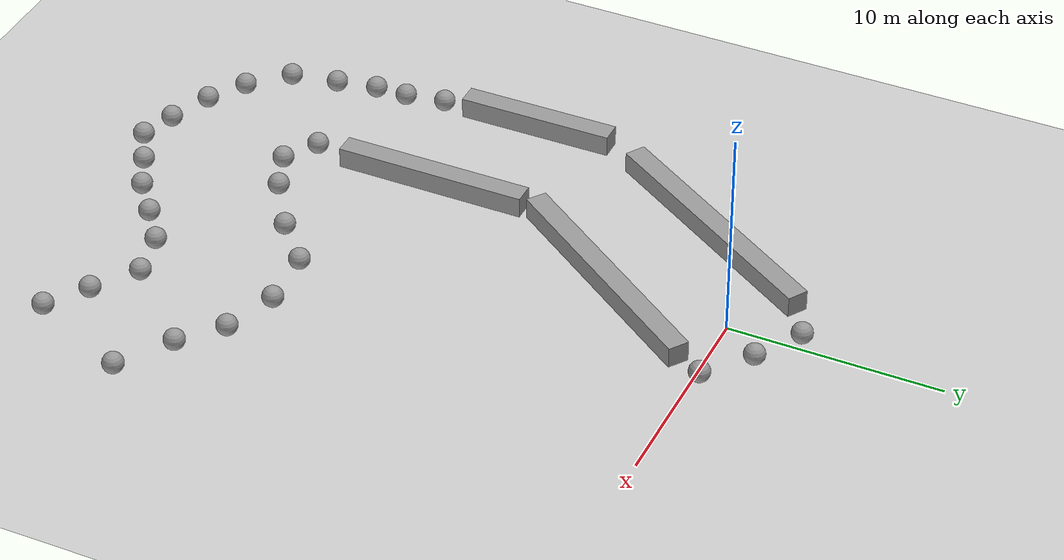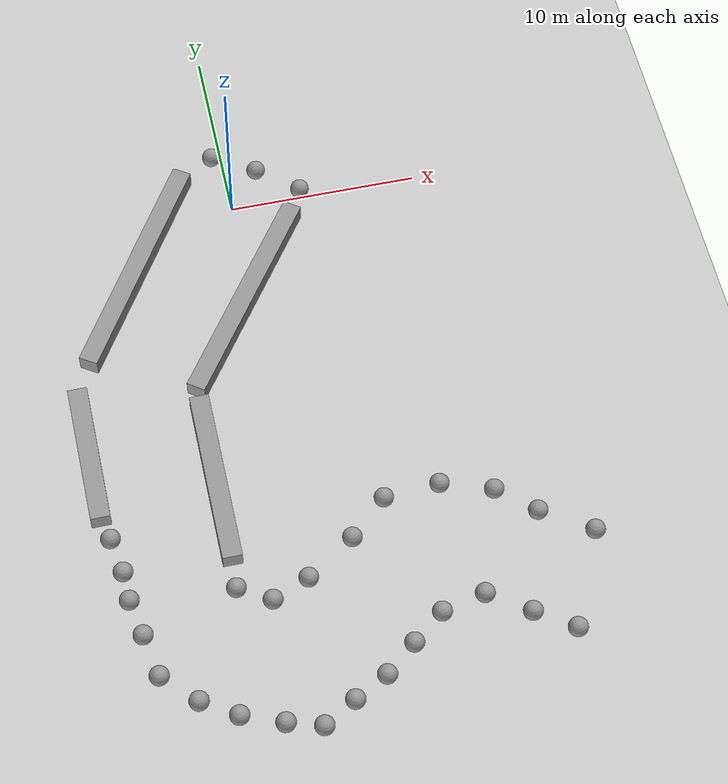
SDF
<sdf version="1.7">
 <world name="empty">
  <light name="sun" type="directional">
   <pose>0 0 10 0 -0 0</pose>
   <diffuse>0.8 0.8 0.8 1</diffuse>
   <specular>0.2 0.2 0.2 1</specular>
   <attenuation>
    <range>1000</range>
    <constant>0.9</constant>
    <linear>0.01</linear>
    <quadratic>0.001</quadratic>
   </attenuation>
   <direction>-0.5 0.1 -0.9</direction>
   <spot><inner_angle>0</inner_angle><outer_angle>0</outer_angle><falloff>0</falloff></spot>
  </light>
  <model name="ground_plane">
   <static>1</static>
   <link name="link">
    <collision name="collision">
     <geometry><plane><normal>0 0 1</normal><size>500 500</size></plane></geometry>
     <surface>
      <friction>
       <ode><mu>0.5</mu><mu2>0.5</mu2></ode>
       <bullet><rolling_friction>0.02</rolling_friction></bullet>
      </friction>
      <contact><ode><kp>5e+06</kp><kd>200000</kd></ode></contact>
     </surface>
    </collision>
    <visual name="visual">
     <cast_shadows>0</cast_shadows>
     <geometry><plane><normal>0 0 1</normal><size>500 500</size></plane></geometry>
     <material>
      <script><uri>file://media/materials/scripts/gazebo.material</uri><name>Gazebo/Grey</name></script>
     </material>
    </visual>
    <velocity_decay><linear>0</linear><angular>0</angular></velocity_decay>
   </link>
  </model>
  <gravity>0 0 -9.8</gravity>
  <magnetic_field>6e-06 2.3e-05 -4.2e-05</magnetic_field>
  <atmosphere type="adiabatic"/>
  <physics type="ode">
   <max_step_size>0.001</max_step_size>
   <real_time_factor>1</real_time_factor>
   <real_time_update_rate>1000</real_time_update_rate>
  </physics>
  <scene><ambient>0.4 0.4 0.4 1</ambient><background>0.7 0.7 0.7 1</background><shadows>1</shadows></scene>
  <spherical_coordinates>
   <surface_model>EARTH_WGS84</surface_model>
   <latitude_deg>0</latitude_deg>
   <longitude_deg>0</longitude_deg>
   <elevation>0</elevation>
   <heading_deg>0</heading_deg>
  </spherical_coordinates>
  <model name="unit_box">
   <pose>-5.71427 -2.9672 0.499855 2.3e-05 5e-06 -0.566468</pose>
   <link name="link">
    <inertial>
     <mass>1</mass>
     <inertia>
      <ixx>0.166667</ixx>
      <ixy>0</ixy>
      <ixz>0</ixz>
      <iyy>0.166667</iyy>
      <iyz>0</iyz>
      <izz>0.166667</izz>
     </inertia>
    </inertial>
    <collision name="collision"><geometry><box><size>1 12.6853 1</size></box></geometry></collision>
    <visual name="visual">
     <geometry><box><size>1 12.6853 1</size></box></geometry>
     <material>
      <script><name>Gazebo/Grey</name><uri>file://media/materials/scripts/gazebo.material</uri></script>
     </material>
    </visual>
   </link>
  </model>
  <model name="unit_box_0">
   <pose>-0.43622 -5.97894 0.499871 2.1e-05 -2e-06 -0.617081</pose>
   <link name="link">
    <inertial>
     <mass>1</mass>
     <inertia>
      <ixx>0.166667</ixx>
      <ixy>0</ixy>
      <ixz>0</ixz>
      <iyy>0.166667</iyy>
      <iyz>0</iyz>
      <izz>0.166667</izz>
     </inertia>
    </inertial>
    <collision name="collision"><geometry><box><size>1 12.2563 1</size></box></geometry></collision>
    <visual name="visual">
     <geometry><box><size>1 12.2563 1</size></box></geometry>
     <material>
      <script><name>Gazebo/Grey</name><uri>file://media/materials/scripts/gazebo.material</uri></script>
     </material>
    </visual>
   </link>
  </model>
  <model name="unit_box_1">
   <pose>-9.91165 -13.5605 0.499997 0 4e-06 0.004345</pose>
   <link name="link">
    <inertial>
     <mass>1</mass>
     <inertia>
      <ixx>0.166667</ixx>
      <ixy>0</ixy>
      <ixz>0</ixz>
      <iyy>0.166667</iyy>
      <iyz>0</iyz>
      <izz>0.166667</izz>
     </inertia>
    </inertial>
    <collision name="collision"><geometry><box><size>1 7.41282 1</size></box></geometry></collision>
    <visual name="visual">
     <geometry><box><size>1 7.41282 1</size></box></geometry>
     <material>
      <script><name>Gazebo/Grey</name><uri>file://media/materials/scripts/gazebo.material</uri></script>
     </material>
    </visual>
   </link>
  </model>
  <model name="unit_box_2">
   <pose>-3.92625 -16.1129 0.499994 1e-06 -1e-06 -0.000456</pose>
   <link name="link">
    <inertial>
     <mass>1</mass>
     <inertia>
      <ixx>0.166667</ixx>
      <ixy>0</ixy>
      <ixz>0</ixz>
      <iyy>0.166667</iyy>
      <iyz>0</iyz>
      <izz>0.166667</izz>
     </inertia>
    </inertial>
    <collision name="collision"><geometry><box><size>1 9.14933 1</size></box></geometry></collision>
    <visual name="visual">
     <geometry><box><size>1 9.14933 1</size></box></geometry>
     <material>
      <script><name>Gazebo/Grey</name><uri>file://media/materials/scripts/gazebo.material</uri></script>
     </material>
    </visual>
   </link>
  </model>
  <model name="unit_sphere">
   <pose>-9.59292 -18.2768 0.499998 0 -0 0</pose>
   <link name="link">
    <inertial>
     <mass>1</mass>
     <inertia><ixx>0.1</ixx><ixy>0</ixy><ixz>0</ixz><iyy>0.1</iyy><iyz>0</iyz><izz>0.1</izz></inertia>
    </inertial>
    <collision name="collision"><geometry><sphere><radius>0.5</radius></sphere></geometry></collision>
    <visual name="visual">
     <geometry><sphere><radius>0.5</radius></sphere></geometry>
     <material>
      <script><name>Gazebo/Grey</name><uri>file://media/materials/scripts/gazebo.material</uri></script>
     </material>
    </visual>
   </link>
  </model>
  <model name="unit_sphere_0">
   <pose>-9.2738 -20.1485 0.499998 0 -0 0</pose>
   <link name="link">
    <inertial>
     <mass>1</mass>
     <inertia><ixx>0.1</ixx><ixy>0</ixy><ixz>0</ixz><iyy>0.1</iyy><iyz>0</iyz><izz>0.1</izz></inertia>
    </inertial>
    <collision name="collision"><geometry><sphere><radius>0.5</radius></sphere></geometry></collision>
    <visual name="visual">
     <geometry><sphere><radius>0.5</radius></sphere></geometry>
     <material>
      <script><name>Gazebo/Grey</name><uri>file://media/materials/scripts/gazebo.material</uri></script>
     </material>
    </visual>
   </link>
  </model>
  <model name="unit_sphere_1">
   <pose>-9.22608 -21.6838 0.499998 0 -0 0</pose>
   <link name="link">
    <inertial>
     <mass>1</mass>
     <inertia><ixx>0.1</ixx><ixy>0</ixy><ixz>0</ixz><iyy>0.1</iyy><iyz>0</iyz><izz>0.1</izz></inertia>
    </inertial>
    <collision name="collision"><geometry><sphere><radius>0.5</radius></sphere></geometry></collision>
    <visual name="visual">
     <geometry><sphere><radius>0.5</radius></sphere></geometry>
     <material>
      <script><name>Gazebo/Grey</name><uri>file://media/materials/scripts/gazebo.material</uri></script>
     </material>
    </visual>
   </link>
  </model>
  <model name="unit_sphere_2">
   <pose>-8.86714 -23.5966 0.499998 0 -0 0</pose>
   <link name="link">
    <inertial>
     <mass>1</mass>
     <inertia><ixx>0.1</ixx><ixy>0</ixy><ixz>0</ixz><iyy>0.1</iyy><iyz>0</iyz><izz>0.1</izz></inertia>
    </inertial>
    <collision name="collision"><geometry><sphere><radius>0.5</radius></sphere></geometry></collision>
    <visual name="visual">
     <geometry><sphere><radius>0.5</radius></sphere></geometry>
     <material>
      <script><name>Gazebo/Grey</name><uri>file://media/materials/scripts/gazebo.material</uri></script>
     </material>
    </visual>
   </link>
  </model>
  <model name="unit_sphere_3">
   <pose>-8.46853 -25.8093 0.499998 0 -0 0</pose>
   <link name="link">
    <inertial>
     <mass>1</mass>
     <inertia><ixx>0.1</ixx><ixy>0</ixy><ixz>0</ixz><iyy>0.1</iyy><iyz>0</iyz><izz>0.1</izz></inertia>
    </inertial>
    <collision name="collision"><geometry><sphere><radius>0.5</radius></sphere></geometry></collision>
    <visual name="visual">
     <geometry><sphere><radius>0.5</radius></sphere></geometry>
     <material>
      <script><name>Gazebo/Grey</name><uri>file://media/materials/scripts/gazebo.material</uri></script>
     </material>
    </visual>
   </link>
  </model>
  <model name="unit_sphere_4">
   <pose>-6.8471 -27.4361 0.499998 0 -0 0</pose>
   <link name="link">
    <inertial>
     <mass>1</mass>
     <inertia><ixx>0.1</ixx><ixy>0</ixy><ixz>0</ixz><iyy>0.1</iyy><iyz>0</iyz><izz>0.1</izz></inertia>
    </inertial>
    <collision name="collision"><geometry><sphere><radius>0.5</radius></sphere></geometry></collision>
    <visual name="visual">
     <geometry><sphere><radius>0.5</radius></sphere></geometry>
     <material>
      <script><name>Gazebo/Grey</name><uri>file://media/materials/scripts/gazebo.material</uri></script>
     </material>
    </visual>
   </link>
  </model>
  <model name="unit_sphere_5">
   <pose>-5.10825 -28.5217 0.499998 0 -0 0</pose>
   <link name="link">
    <inertial>
     <mass>1</mass>
     <inertia><ixx>0.1</ixx><ixy>0</ixy><ixz>0</ixz><iyy>0.1</iyy><iyz>0</iyz><izz>0.1</izz></inertia>
    </inertial>
    <collision name="collision"><geometry><sphere><radius>0.5</radius></sphere></geometry></collision>
    <visual name="visual">
     <geometry><sphere><radius>0.5</radius></sphere></geometry>
     <material>
      <script><name>Gazebo/Grey</name><uri>file://media/materials/scripts/gazebo.material</uri></script>
     </material>
    </visual>
   </link>
  </model>
  <model name="unit_sphere_6">
   <pose>-3.04998 -29.318 0.499998 0 -0 0</pose>
   <link name="link">
    <inertial>
     <mass>1</mass>
     <inertia><ixx>0.1</ixx><ixy>0</ixy><ixz>0</ixz><iyy>0.1</iyy><iyz>0</iyz><izz>0.1</izz></inertia>
    </inertial>
    <collision name="collision"><geometry><sphere><radius>0.5</radius></sphere></geometry></collision>
    <visual name="visual">
     <geometry><sphere><radius>0.5</radius></sphere></geometry>
     <material>
      <script><name>Gazebo/Grey</name><uri>file://media/materials/scripts/gazebo.material</uri></script>
     </material>
    </visual>
   </link>
  </model>
  <model name="unit_sphere_7">
   <pose>-1.30682 -29.845 0.499998 0 -0 0</pose>
   <link name="link">
    <inertial>
     <mass>1</mass>
     <inertia><ixx>0.1</ixx><ixy>0</ixy><ixz>0</ixz><iyy>0.1</iyy><iyz>0</iyz><izz>0.1</izz></inertia>
    </inertial>
    <collision name="collision"><geometry><sphere><radius>0.5</radius></sphere></geometry></collision>
    <visual name="visual">
     <geometry><sphere><radius>0.5</radius></sphere></geometry>
     <material>
      <script><name>Gazebo/Grey</name><uri>file://media/materials/scripts/gazebo.material</uri></script>
     </material>
    </visual>
   </link>
  </model>
  <model name="unit_sphere_8">
   <pose>0.386413 -28.8807 0.499998 0 -0 0</pose>
   <link name="link">
    <inertial>
     <mass>1</mass>
     <inertia><ixx>0.1</ixx><ixy>0</ixy><ixz>0</ixz><iyy>0.1</iyy><iyz>0</iyz><izz>0.1</izz></inertia>
    </inertial>
    <collision name="collision"><geometry><sphere><radius>0.5</radius></sphere></geometry></collision>
    <visual name="visual">
     <geometry><sphere><radius>0.5</radius></sphere></geometry>
     <material>
      <script><name>Gazebo/Grey</name><uri>file://media/materials/scripts/gazebo.material</uri></script>
     </material>
    </visual>
   </link>
  </model>
  <model name="unit_sphere_9">
   <pose>2.13961 -27.9719 0.499998 0 -0 0</pose>
   <link name="link">
    <inertial>
     <mass>1</mass>
     <inertia><ixx>0.1</ixx><ixy>0</ixy><ixz>0</ixz><iyy>0.1</iyy><iyz>0</iyz><izz>0.1</izz></inertia>
    </inertial>
    <collision name="collision"><geometry><sphere><radius>0.5</radius></sphere></geometry></collision>
    <visual name="visual">
     <geometry><sphere><radius>0.5</radius></sphere></geometry>
     <material>
      <script><name>Gazebo/Grey</name><uri>file://media/materials/scripts/gazebo.material</uri></script>
     </material>
    </visual>
   </link>
  </model>
  <model name="unit_sphere_10">
   <pose>3.77207 -26.6635 0.499998 0 -0 0</pose>
   <link name="link">
    <inertial>
     <mass>1</mass>
     <inertia><ixx>0.1</ixx><ixy>0</ixy><ixz>0</ixz><iyy>0.1</iyy><iyz>0</iyz><izz>0.1</izz></inertia>
    </inertial>
    <collision name="collision"><geometry><sphere><radius>0.5</radius></sphere></geometry></collision>
    <visual name="visual">
     <geometry><sphere><radius>0.5</radius></sphere></geometry>
     <material>
      <script><name>Gazebo/Grey</name><uri>file://media/materials/scripts/gazebo.material</uri></script>
     </material>
    </visual>
   </link>
  </model>
  <model name="unit_sphere_11">
   <pose>5.44862 -25.3884 0.499998 0 -0 0</pose>
   <link name="link">
    <inertial>
     <mass>1</mass>
     <inertia><ixx>0.1</ixx><ixy>0</ixy><ixz>0</ixz><iyy>0.1</iyy><iyz>0</iyz><izz>0.1</izz></inertia>
    </inertial>
    <collision name="collision"><geometry><sphere><radius>0.5</radius></sphere></geometry></collision>
    <visual name="visual">
     <geometry><sphere><radius>0.5</radius></sphere></geometry>
     <material>
      <script><name>Gazebo/Grey</name><uri>file://media/materials/scripts/gazebo.material</uri></script>
     </material>
    </visual>
   </link>
  </model>
  <model name="unit_sphere_12">
   <pose>-4.03154 -22.1152 0.499998 0 -0 0</pose>
   <link name="link">
    <inertial>
     <mass>1</mass>
     <inertia><ixx>0.1</ixx><ixy>0</ixy><ixz>0</ixz><iyy>0.1</iyy><iyz>0</iyz><izz>0.1</izz></inertia>
    </inertial>
    <collision name="collision"><geometry><sphere><radius>0.5</radius></sphere></geometry></collision>
    <visual name="visual">
     <geometry><sphere><radius>0.5</radius></sphere></geometry>
     <material>
      <script><name>Gazebo/Grey</name><uri>file://media/materials/scripts/gazebo.material</uri></script>
     </material>
    </visual>
   </link>
  </model>
  <model name="unit_sphere_13">
   <pose>-2.41046 -23.0804 0.499998 0 -0 0</pose>
   <link name="link">
    <inertial>
     <mass>1</mass>
     <inertia><ixx>0.1</ixx><ixy>0</ixy><ixz>0</ixz><iyy>0.1</iyy><iyz>0</iyz><izz>0.1</izz></inertia>
    </inertial>
    <collision name="collision"><geometry><sphere><radius>0.5</radius></sphere></geometry></collision>
    <visual name="visual">
     <geometry><sphere><radius>0.5</radius></sphere></geometry>
     <material>
      <script><name>Gazebo/Grey</name><uri>file://media/materials/scripts/gazebo.material</uri></script>
     </material>
    </visual>
   </link>
  </model>
  <model name="unit_sphere_14">
   <pose>-0.484281 -22.3023 0.499998 0 -0 0</pose>
   <link name="link">
    <inertial>
     <mass>1</mass>
     <inertia><ixx>0.1</ixx><ixy>0</ixy><ixz>0</ixz><iyy>0.1</iyy><iyz>0</iyz><izz>0.1</izz></inertia>
    </inertial>
    <collision name="collision"><geometry><sphere><radius>0.5</radius></sphere></geometry></collision>
    <visual name="visual">
     <geometry><sphere><radius>0.5</radius></sphere></geometry>
     <material>
      <script><name>Gazebo/Grey</name><uri>file://media/materials/scripts/gazebo.material</uri></script>
     </material>
    </visual>
   </link>
  </model>
  <model name="unit_sphere_15">
   <pose>2.06008 -20.6395 0.499998 0 -0 0</pose>
   <link name="link">
    <inertial>
     <mass>1</mass>
     <inertia><ixx>0.1</ixx><ixy>0</ixy><ixz>0</ixz><iyy>0.1</iyy><iyz>0</iyz><izz>0.1</izz></inertia>
    </inertial>
    <collision name="collision"><geometry><sphere><radius>0.5</radius></sphere></geometry></collision>
    <visual name="visual">
     <geometry><sphere><radius>0.5</radius></sphere></geometry>
     <material>
      <script><name>Gazebo/Grey</name><uri>file://media/materials/scripts/gazebo.material</uri></script>
     </material>
    </visual>
   </link>
  </model>
  <model name="unit_sphere_16">
   <pose>7.71446 -24.8787 0.499998 0 -0 0</pose>
   <link name="link">
    <inertial>
     <mass>1</mass>
     <inertia><ixx>0.1</ixx><ixy>0</ixy><ixz>0</ixz><iyy>0.1</iyy><iyz>0</iyz><izz>0.1</izz></inertia>
    </inertial>
    <collision name="collision"><geometry><sphere><radius>0.5</radius></sphere></geometry></collision>
    <visual name="visual">
     <geometry><sphere><radius>0.5</radius></sphere></geometry>
     <material>
      <script><name>Gazebo/Grey</name><uri>file://media/materials/scripts/gazebo.material</uri></script>
     </material>
    </visual>
   </link>
  </model>
  <model name="unit_sphere_17">
   <pose>9.74845 -26.2658 0.499998 0 -0 0</pose>
   <link name="link">
    <inertial>
     <mass>1</mass>
     <inertia><ixx>0.1</ixx><ixy>0</ixy><ixz>0</ixz><iyy>0.1</iyy><iyz>0</iyz><izz>0.1</izz></inertia>
    </inertial>
    <collision name="collision"><geometry><sphere><radius>0.5</radius></sphere></geometry></collision>
    <visual name="visual">
     <geometry><sphere><radius>0.5</radius></sphere></geometry>
     <material>
      <script><name>Gazebo/Grey</name><uri>file://media/materials/scripts/gazebo.material</uri></script>
     </material>
    </visual>
   </link>
  </model>
  <model name="unit_sphere_18">
   <pose>11.641 -27.5274 0.499998 0 -0 0</pose>
   <link name="link">
    <inertial>
     <mass>1</mass>
     <inertia><ixx>0.1</ixx><ixy>0</ixy><ixz>0</ixz><iyy>0.1</iyy><iyz>0</iyz><izz>0.1</izz></inertia>
    </inertial>
    <collision name="collision"><geometry><sphere><radius>0.5</radius></sphere></geometry></collision>
    <visual name="visual">
     <geometry><sphere><radius>0.5</radius></sphere></geometry>
     <material>
      <script><name>Gazebo/Grey</name><uri>file://media/materials/scripts/gazebo.material</uri></script>
     </material>
    </visual>
   </link>
  </model>
  <model name="unit_sphere_19">
   <pose>4.05934 -18.8498 0.499998 0 -0 0</pose>
   <link name="link">
    <inertial>
     <mass>1</mass>
     <inertia><ixx>0.1</ixx><ixy>0</ixy><ixz>0</ixz><iyy>0.1</iyy><iyz>0</iyz><izz>0.1</izz></inertia>
    </inertial>
    <collision name="collision"><geometry><sphere><radius>0.5</radius></sphere></geometry></collision>
    <visual name="visual">
     <geometry><sphere><radius>0.5</radius></sphere></geometry>
     <material>
      <script><name>Gazebo/Grey</name><uri>file://media/materials/scripts/gazebo.material</uri></script>
     </material>
    </visual>
   </link>
  </model>
  <model name="unit_sphere_20">
   <pose>6.94903 -18.6518 0.499998 0 -0 0</pose>
   <link name="link">
    <inertial>
     <mass>1</mass>
     <inertia><ixx>0.1</ixx><ixy>0</ixy><ixz>0</ixz><iyy>0.1</iyy><iyz>0</iyz><izz>0.1</izz></inertia>
    </inertial>
    <collision name="collision"><geometry><sphere><radius>0.5</radius></sphere></geometry></collision>
    <visual name="visual">
     <geometry><sphere><radius>0.5</radius></sphere></geometry>
     <material>
      <script><name>Gazebo/Grey</name><uri>file://media/materials/scripts/gazebo.material</uri></script>
     </material>
    </visual>
   </link>
  </model>
  <model name="unit_sphere_21">
   <pose>9.54232 -19.5231 0.499998 0 -0 0</pose>
   <link name="link">
    <inertial>
     <mass>1</mass>
     <inertia><ixx>0.1</ixx><ixy>0</ixy><ixz>0</ixz><iyy>0.1</iyy><iyz>0</iyz><izz>0.1</izz></inertia>
    </inertial>
    <collision name="collision"><geometry><sphere><radius>0.5</radius></sphere></geometry></collision>
    <visual name="visual">
     <geometry><sphere><radius>0.5</radius></sphere></geometry>
     <material>
      <script><name>Gazebo/Grey</name><uri>file://media/materials/scripts/gazebo.material</uri></script>
     </material>
    </visual>
   </link>
  </model>
  <model name="unit_sphere_22">
   <pose>11.3777 -21.1071 0.499998 0 -0 0</pose>
   <link name="link">
    <inertial>
     <mass>1</mass>
     <inertia><ixx>0.1</ixx><ixy>0</ixy><ixz>0</ixz><iyy>0.1</iyy><iyz>0</iyz><izz>0.1</izz></inertia>
    </inertial>
    <collision name="collision"><geometry><sphere><radius>0.5</radius></sphere></geometry></collision>
    <visual name="visual">
     <geometry><sphere><radius>0.5</radius></sphere></geometry>
     <material>
      <script><name>Gazebo/Grey</name><uri>file://media/materials/scripts/gazebo.material</uri></script>
     </material>
    </visual>
   </link>
  </model>
  <model name="unit_sphere_23">
   <pose>13.8748 -22.7068 0.499998 0 -0 0</pose>
   <link name="link">
    <inertial>
     <mass>1</mass>
     <inertia><ixx>0.1</ixx><ixy>0</ixy><ixz>0</ixz><iyy>0.1</iyy><iyz>0</iyz><izz>0.1</izz></inertia>
    </inertial>
    <collision name="collision"><geometry><sphere><radius>0.5</radius></sphere></geometry></collision>
    <visual name="visual">
     <geometry><sphere><radius>0.5</radius></sphere></geometry>
     <material>
      <script><name>Gazebo/Grey</name><uri>file://media/materials/scripts/gazebo.material</uri></script>
     </material>
    </visual>
   </link>
  </model>
  <model name="unit_sphere_24">
   <pose>3.76075 0.268178 0.499998 0 -0 0</pose>
   <link name="link">
    <inertial>
     <mass>1</mass>
     <inertia><ixx>0.1</ixx><ixy>0</ixy><ixz>0</ixz><iyy>0.1</iyy><iyz>0</iyz><izz>0.1</izz></inertia>
    </inertial>
    <collision name="collision"><geometry><sphere><radius>0.5</radius></sphere></geometry></collision>
    <visual name="visual">
     <geometry><sphere><radius>0.5</radius></sphere></geometry>
     <material>
      <script><name>Gazebo/Grey</name><uri>file://media/materials/scripts/gazebo.material</uri></script>
     </material>
    </visual>
   </link>
  </model>
  <model name="unit_sphere_25">
   <pose>1.67279 1.96209 0.499998 0 -0 0</pose>
   <link name="link">
    <inertial>
     <mass>1</mass>
     <inertia><ixx>0.1</ixx><ixy>0</ixy><ixz>0</ixz><iyy>0.1</iyy><iyz>0</iyz><izz>0.1</izz></inertia>
    </inertial>
    <collision name="collision"><geometry><sphere><radius>0.5</radius></sphere></geometry></collision>
    <visual name="visual">
     <geometry><sphere><radius>0.5</radius></sphere></geometry>
     <material>
      <script><name>Gazebo/Grey</name><uri>file://media/materials/scripts/gazebo.material</uri></script>
     </material>
    </visual>
   </link>
  </model>
  <model name="unit_sphere_26">
   <pose>-0.538413 3.2927 0.499998 0 -0 0</pose>
   <link name="link">
    <inertial>
     <mass>1</mass>
     <inertia><ixx>0.1</ixx><ixy>0</ixy><ixz>0</ixz><iyy>0.1</iyy><iyz>0</iyz><izz>0.1</izz></inertia>
    </inertial>
    <collision name="collision"><geometry><sphere><radius>0.5</radius></sphere></geometry></collision>
    <visual name="visual">
     <geometry><sphere><radius>0.5</radius></sphere></geometry>
     <material>
      <script><name>Gazebo/Grey</name><uri>file://media/materials/scripts/gazebo.material</uri></script>
     </material>
    </visual>
   </link>
  </model>
 </world>
</sdf>
